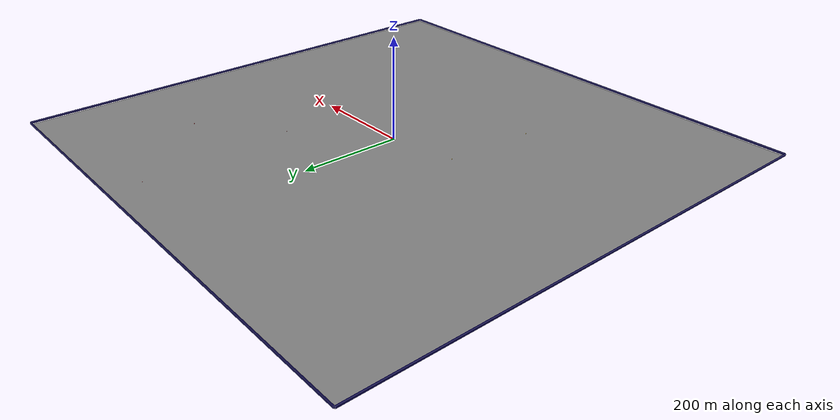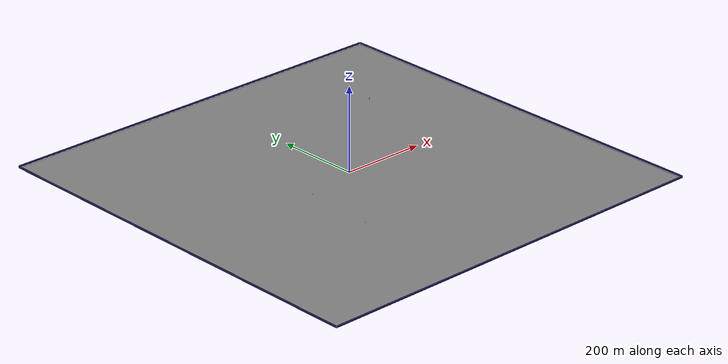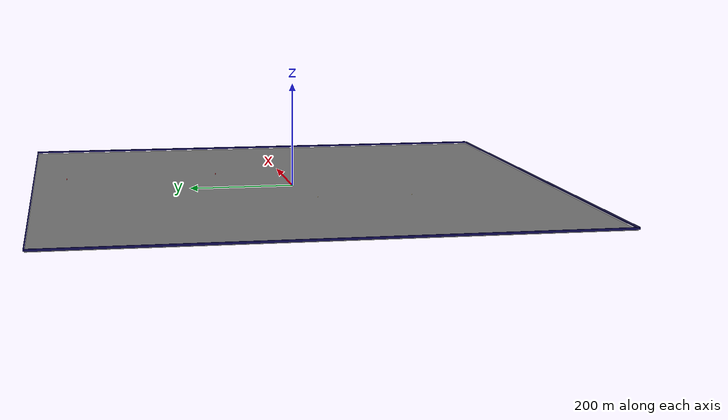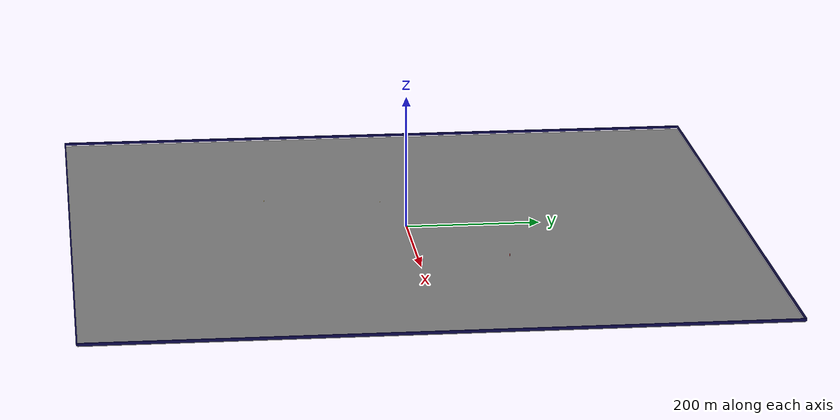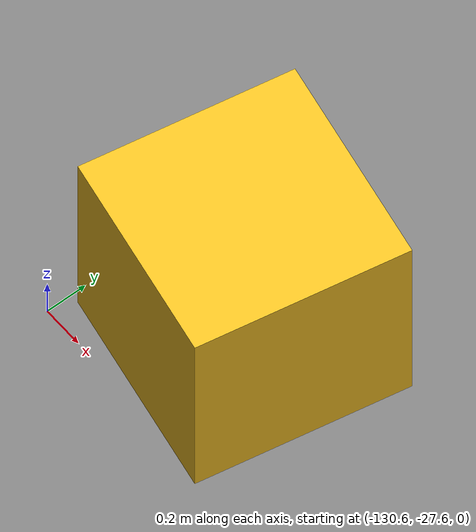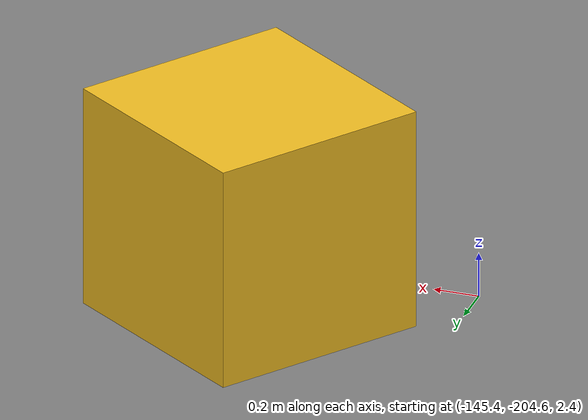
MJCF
<mujoco model="unnamed_model">
  <default>
    <default class="/" />
    <default class="border/" />
    <default class="border_1/" />
    <default class="border_2/" />
    <default class="border_3/" />
    <default class="agentplaceholder/" />
    <default class="placeholder_box/" />
    <default class="stone0/" />
    <default class="stone1/" />
    <default class="tree/" />
    <default class="tree_1/" />
  </default>
  <worldbody>
    <body name="border/">
      <body name="border/border" pos="0 501 2">
        <geom name="border/border_geom" class="border/" type="box" size="500 1 2" rgba="0.035000000000000003 0.016 0.28999999999999998 1" />
      </body>
    </body>
    <body name="border_1/">
      <body name="border_1/border" pos="0 -501 2">
        <geom name="border_1/border_geom" class="border_1/" type="box" size="500 1 2" rgba="0.035000000000000003 0.016 0.28999999999999998 1" />
      </body>
    </body>
    <body name="border_2/">
      <body name="border_2/border" pos="501 0 2">
        <geom name="border_2/border_geom" class="border_2/" type="box" size="1 500 2" rgba="0.035000000000000003 0.016 0.28999999999999998 1" />
      </body>
    </body>
    <body name="border_3/">
      <body name="border_3/border" pos="-501 0 2">
        <geom name="border_3/border_geom" class="border_3/" type="box" size="1 500 2" rgba="0.035000000000000003 0.016 0.28999999999999998 1" />
      </body>
    </body>
    <body euler="0 0 54.658895115886537" name="agentplaceholder/">
      <joint name="agentplaceholder/boxagent_freeJoint/" class="/" type="free" />
      <body name="agentplaceholder/agentplaceholder" pos="-250 0 3" euler="0 0 0">
        <geom name="agentplaceholder/boxagent_geom" class="agentplaceholder/" type="box" size="0.5 0.5 0.5" rgba="0.94899999999999995 0.74509999999999998 0.1333 1" euler="0 0 0" />
      </body>
    </body>
    <body name="placeholder_box/">
      <body name="placeholder_box/placeholder_box" pos="-129.97064999999998 -27.080399999999997 0.5" euler="0 0 78.989607868821338">
        <geom name="placeholder_box/box_geom" class="placeholder_box/" type="box" size="0.5 0.5 0.5" rgba="0.94899999999999995 0.74509999999999998 0.1333 1" euler="0 0 0" />
      </body>
    </body>
    <body name="stone0/">
      <body name="stone0/stone0" pos="263.05900000000003 -469.40839999999997 0.10000000000000001" euler="0 0 55.13355250318844">
        <geom name="stone0/stone_geom" class="stone0/" type="box" size="0.10000000000000001 0.10000000000000001 2" rgba="1 0 0 1" />
      </body>
    </body>
    <body name="stone1/">
      <body name="stone1/stone1" pos="141.35185000000001 436.43049999999994 0.10000000000000001" euler="0 0 -8.9777583142994217">
        <geom name="stone1/stone_geom" class="stone1/" type="box" size="0.10000000000000001 0.10000000000000001 2" rgba="1 0 0 1" />
      </body>
    </body>
    <body name="tree/">
      <body name="tree/tree" pos="299.24689999999998 255.39480000000003 0.10000000000000001" euler="0 0 -40.362339329649529">
        <geom name="tree/tree_geom" class="tree/" type="box" size="0.10000000000000001 0.10000000000000001 2" rgba="1 0 0 1" />
      </body>
    </body>
    <body name="tree_1/">
      <body name="tree_1/tree" pos="157.83505 134.73599999999999 0.10000000000000001" euler="0 0 130.16592155998245">
        <geom name="tree_1/tree_geom" class="tree_1/" type="box" size="0.10000000000000001 0.10000000000000001 2" rgba="1 0 0 1" />
      </body>
    </body>
    <geom name="base_plane" class="/" type="plane" size="500 500 0.10000000000000001" />
  </worldbody>
</mujoco>
